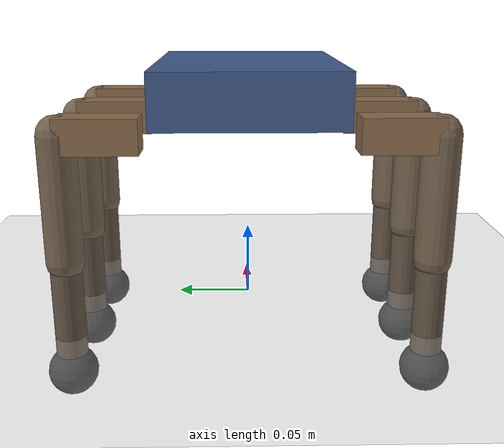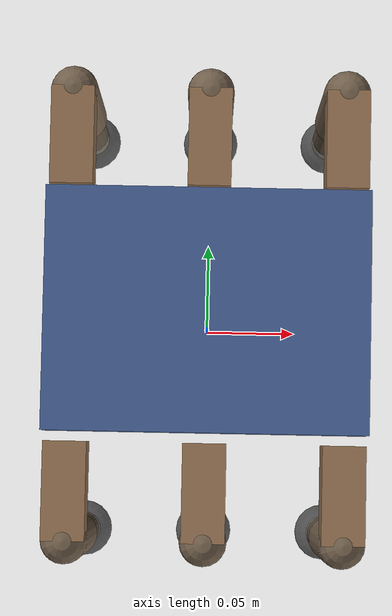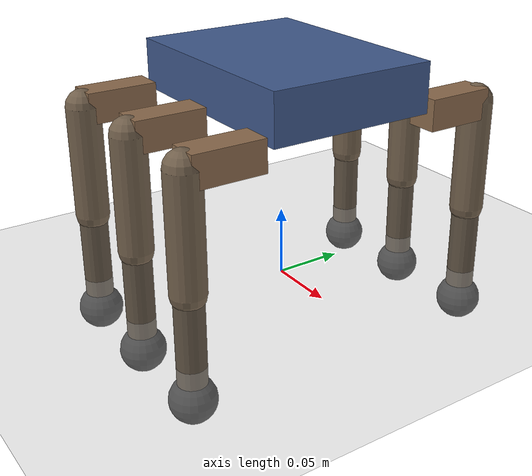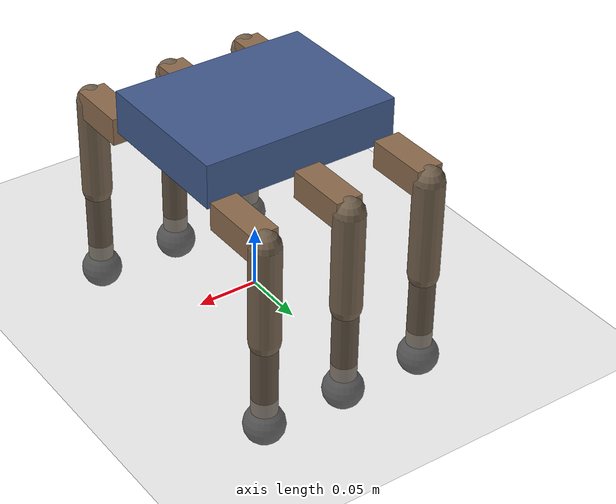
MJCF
<mujoco model="argos_roach">

  <compiler angle="radian" autolimits="true"/>
  <option timestep="0.002" integrator="Euler" cone="pyramidal" iterations="100"
          solver="Newton" jacobian="dense"/>

  <worldbody>
    <geom name="floor" type="plane" size="10 10 0.1" pos="0 0 0"
          friction="0.8 0.005 0.0001" condim="3" rgba="0.7 0.7 0.7 1"/>
    <body name="body" pos="0 0 0.15">
      <freejoint/>
      <geom name="body_geom" type="box" size="0.08 0.06 0.0175"
            mass="0.7" rgba="0.25 0.35 0.55 1"/>

    <body name="coxa0" pos="0.07 0.065 -0.02">
      <joint name="j_coxa0" type="hinge" axis="0 0 1"
             range="-0.8 0.8"
             damping="0.5" frictionloss="0.02"/>
      <geom name="coxa0" type="box" size="0.011 0.025 0.011"
            pos="0 0.025 0" mass="0.035" rgba="0.55 0.42 0.30 1"/>
      <body name="femur0" pos="0 0.05 0">
        <joint name="j_femur0" type="hinge" axis="1 0 0"
               range="-1.3 1.3"
               damping="0.8" armature="0.01" frictionloss="0.02"/>
        <geom name="femur0" type="capsule" size="0.012 0.04"
              pos="0 0 -0.04" mass="0.055" rgba="0.45 0.38 0.30 1"/>
        <body name="tibia0" pos="0 0 -0.08">
          <joint name="j_tibia0" type="hinge" axis="1 0 0"
                 range="-2.6 2.6"
                 damping="0.8" armature="0.01" frictionloss="0.02"/>
          <geom name="tibia0" type="capsule" size="0.01 0.04"
                pos="0 0 -0.04" mass="0.045" rgba="0.38 0.33 0.27 1"/>
          <geom name="foot0" type="sphere" size="0.016" pos="0 0 -0.0752"
                mass="0.005" rgba="0.2 0.2 0.2 1" condim="3" priority="1"/>
        </body>
      </body>
    </body>

    <body name="coxa1" pos="0.07 -0.065 -0.02">
      <joint name="j_coxa1" type="hinge" axis="0 0 1"
             range="-0.8 0.8"
             damping="0.5" frictionloss="0.02"/>
      <geom name="coxa1" type="box" size="0.011 0.025 0.011"
            pos="0 -0.025 0" mass="0.035" rgba="0.55 0.42 0.30 1"/>
      <body name="femur1" pos="0 -0.05 0">
        <joint name="j_femur1" type="hinge" axis="1 0 0"
               range="-1.3 1.3"
               damping="0.8" armature="0.01" frictionloss="0.02"/>
        <geom name="femur1" type="capsule" size="0.012 0.04"
              pos="0 0 -0.04" mass="0.055" rgba="0.45 0.38 0.30 1"/>
        <body name="tibia1" pos="0 0 -0.08">
          <joint name="j_tibia1" type="hinge" axis="1 0 0"
                 range="-2.6 2.6"
                 damping="0.8" armature="0.01" frictionloss="0.02"/>
          <geom name="tibia1" type="capsule" size="0.01 0.04"
                pos="0 0 -0.04" mass="0.045" rgba="0.38 0.33 0.27 1"/>
          <geom name="foot1" type="sphere" size="0.016" pos="0 0 -0.0752"
                mass="0.005" rgba="0.2 0.2 0.2 1" condim="3" priority="1"/>
        </body>
      </body>
    </body>

    <body name="coxa2" pos="0.0 -0.065 -0.02">
      <joint name="j_coxa2" type="hinge" axis="0 0 1"
             range="-0.8 0.8"
             damping="0.5" frictionloss="0.02"/>
      <geom name="coxa2" type="box" size="0.011 0.025 0.011"
            pos="0 -0.025 0" mass="0.035" rgba="0.55 0.42 0.30 1"/>
      <body name="femur2" pos="0 -0.05 0">
        <joint name="j_femur2" type="hinge" axis="1 0 0"
               range="-1.3 1.3"
               damping="0.8" armature="0.01" frictionloss="0.02"/>
        <geom name="femur2" type="capsule" size="0.012 0.04"
              pos="0 0 -0.04" mass="0.055" rgba="0.45 0.38 0.30 1"/>
        <body name="tibia2" pos="0 0 -0.08">
          <joint name="j_tibia2" type="hinge" axis="1 0 0"
                 range="-2.6 2.6"
                 damping="0.8" armature="0.01" frictionloss="0.02"/>
          <geom name="tibia2" type="capsule" size="0.01 0.04"
                pos="0 0 -0.04" mass="0.045" rgba="0.38 0.33 0.27 1"/>
          <geom name="foot2" type="sphere" size="0.016" pos="0 0 -0.0752"
                mass="0.005" rgba="0.2 0.2 0.2 1" condim="3" priority="1"/>
        </body>
      </body>
    </body>

    <body name="coxa3" pos="0.0 0.065 -0.02">
      <joint name="j_coxa3" type="hinge" axis="0 0 1"
             range="-0.8 0.8"
             damping="0.5" frictionloss="0.02"/>
      <geom name="coxa3" type="box" size="0.011 0.025 0.011"
            pos="0 0.025 0" mass="0.035" rgba="0.55 0.42 0.30 1"/>
      <body name="femur3" pos="0 0.05 0">
        <joint name="j_femur3" type="hinge" axis="1 0 0"
               range="-1.3 1.3"
               damping="0.8" armature="0.01" frictionloss="0.02"/>
        <geom name="femur3" type="capsule" size="0.012 0.04"
              pos="0 0 -0.04" mass="0.055" rgba="0.45 0.38 0.30 1"/>
        <body name="tibia3" pos="0 0 -0.08">
          <joint name="j_tibia3" type="hinge" axis="1 0 0"
                 range="-2.6 2.6"
                 damping="0.8" armature="0.01" frictionloss="0.02"/>
          <geom name="tibia3" type="capsule" size="0.01 0.04"
                pos="0 0 -0.04" mass="0.045" rgba="0.38 0.33 0.27 1"/>
          <geom name="foot3" type="sphere" size="0.016" pos="0 0 -0.0752"
                mass="0.005" rgba="0.2 0.2 0.2 1" condim="3" priority="1"/>
        </body>
      </body>
    </body>

    <body name="coxa4" pos="-0.07 0.065 -0.02">
      <joint name="j_coxa4" type="hinge" axis="0 0 1"
             range="-0.8 0.8"
             damping="0.5" frictionloss="0.02"/>
      <geom name="coxa4" type="box" size="0.011 0.025 0.011"
            pos="0 0.025 0" mass="0.035" rgba="0.55 0.42 0.30 1"/>
      <body name="femur4" pos="0 0.05 0">
        <joint name="j_femur4" type="hinge" axis="1 0 0"
               range="-1.3 1.3"
               damping="0.8" armature="0.01" frictionloss="0.02"/>
        <geom name="femur4" type="capsule" size="0.012 0.04"
              pos="0 0 -0.04" mass="0.055" rgba="0.45 0.38 0.30 1"/>
        <body name="tibia4" pos="0 0 -0.08">
          <joint name="j_tibia4" type="hinge" axis="1 0 0"
                 range="-2.6 2.6"
                 damping="0.8" armature="0.01" frictionloss="0.02"/>
          <geom name="tibia4" type="capsule" size="0.01 0.04"
                pos="0 0 -0.04" mass="0.045" rgba="0.38 0.33 0.27 1"/>
          <geom name="foot4" type="sphere" size="0.016" pos="0 0 -0.0752"
                mass="0.005" rgba="0.2 0.2 0.2 1" condim="3" priority="1"/>
        </body>
      </body>
    </body>

    <body name="coxa5" pos="-0.07 -0.065 -0.02">
      <joint name="j_coxa5" type="hinge" axis="0 0 1"
             range="-0.8 0.8"
             damping="0.5" frictionloss="0.02"/>
      <geom name="coxa5" type="box" size="0.011 0.025 0.011"
            pos="0 -0.025 0" mass="0.035" rgba="0.55 0.42 0.30 1"/>
      <body name="femur5" pos="0 -0.05 0">
        <joint name="j_femur5" type="hinge" axis="1 0 0"
               range="-1.3 1.3"
               damping="0.8" armature="0.01" frictionloss="0.02"/>
        <geom name="femur5" type="capsule" size="0.012 0.04"
              pos="0 0 -0.04" mass="0.055" rgba="0.45 0.38 0.30 1"/>
        <body name="tibia5" pos="0 0 -0.08">
          <joint name="j_tibia5" type="hinge" axis="1 0 0"
                 range="-2.6 2.6"
                 damping="0.8" armature="0.01" frictionloss="0.02"/>
          <geom name="tibia5" type="capsule" size="0.01 0.04"
                pos="0 0 -0.04" mass="0.045" rgba="0.38 0.33 0.27 1"/>
          <geom name="foot5" type="sphere" size="0.016" pos="0 0 -0.0752"
                mass="0.005" rgba="0.2 0.2 0.2 1" condim="3" priority="1"/>
        </body>
      </body>
    </body>
    </body>
  </worldbody>

  <contact>
    <exclude body1="coxa0" body2="tibia0"/>
    <exclude body1="coxa1" body2="tibia1"/>
    <exclude body1="coxa2" body2="tibia2"/>
    <exclude body1="coxa3" body2="tibia3"/>
    <exclude body1="coxa4" body2="tibia4"/>
    <exclude body1="coxa5" body2="tibia5"/>
  </contact>

  <actuator>
    <position name="a_coxa0" joint="j_coxa0" kp="60.0" ctrlrange="-1.5 1.5" forcerange="-2.5 2.5" gear="1"/>
    <position name="a_femur0" joint="j_femur0" kp="60.0" ctrlrange="-1.5 1.5" forcerange="-2.5 2.5" gear="1"/>
    <position name="a_tibia0" joint="j_tibia0" kp="60.0" ctrlrange="-1.5 1.5" forcerange="-2.5 2.5" gear="1"/>
    <position name="a_coxa1" joint="j_coxa1" kp="60.0" ctrlrange="-1.5 1.5" forcerange="-2.5 2.5" gear="1"/>
    <position name="a_femur1" joint="j_femur1" kp="60.0" ctrlrange="-1.5 1.5" forcerange="-2.5 2.5" gear="1"/>
    <position name="a_tibia1" joint="j_tibia1" kp="60.0" ctrlrange="-1.5 1.5" forcerange="-2.5 2.5" gear="1"/>
    <position name="a_coxa2" joint="j_coxa2" kp="60.0" ctrlrange="-1.5 1.5" forcerange="-2.5 2.5" gear="1"/>
    <position name="a_femur2" joint="j_femur2" kp="60.0" ctrlrange="-1.5 1.5" forcerange="-2.5 2.5" gear="1"/>
    <position name="a_tibia2" joint="j_tibia2" kp="60.0" ctrlrange="-1.5 1.5" forcerange="-2.5 2.5" gear="1"/>
    <position name="a_coxa3" joint="j_coxa3" kp="60.0" ctrlrange="-1.5 1.5" forcerange="-2.5 2.5" gear="1"/>
    <position name="a_femur3" joint="j_femur3" kp="60.0" ctrlrange="-1.5 1.5" forcerange="-2.5 2.5" gear="1"/>
    <position name="a_tibia3" joint="j_tibia3" kp="60.0" ctrlrange="-1.5 1.5" forcerange="-2.5 2.5" gear="1"/>
    <position name="a_coxa4" joint="j_coxa4" kp="60.0" ctrlrange="-1.5 1.5" forcerange="-2.5 2.5" gear="1"/>
    <position name="a_femur4" joint="j_femur4" kp="60.0" ctrlrange="-1.5 1.5" forcerange="-2.5 2.5" gear="1"/>
    <position name="a_tibia4" joint="j_tibia4" kp="60.0" ctrlrange="-1.5 1.5" forcerange="-2.5 2.5" gear="1"/>
    <position name="a_coxa5" joint="j_coxa5" kp="60.0" ctrlrange="-1.5 1.5" forcerange="-2.5 2.5" gear="1"/>
    <position name="a_femur5" joint="j_femur5" kp="60.0" ctrlrange="-1.5 1.5" forcerange="-2.5 2.5" gear="1"/>
    <position name="a_tibia5" joint="j_tibia5" kp="60.0" ctrlrange="-1.5 1.5" forcerange="-2.5 2.5" gear="1"/>
  </actuator>
</mujoco>
